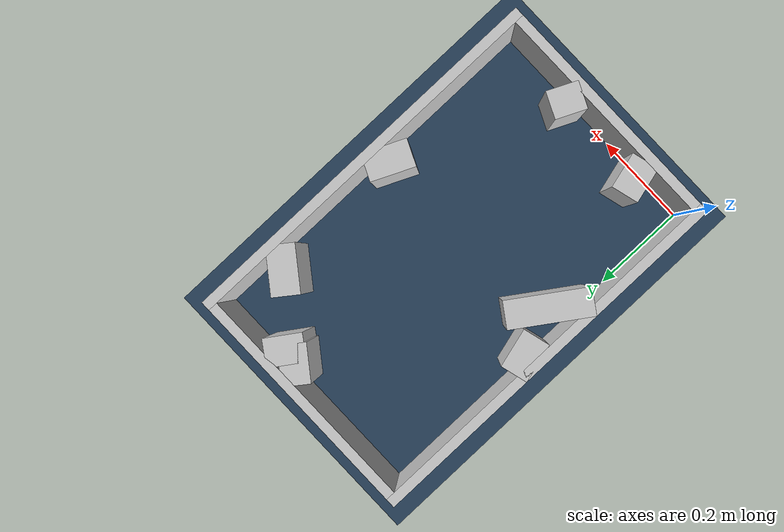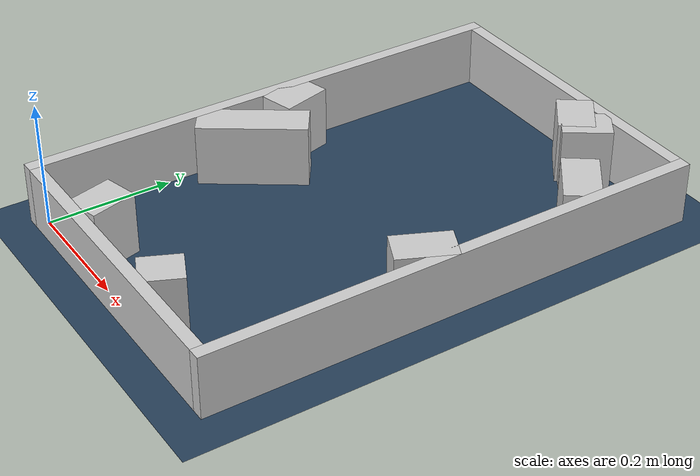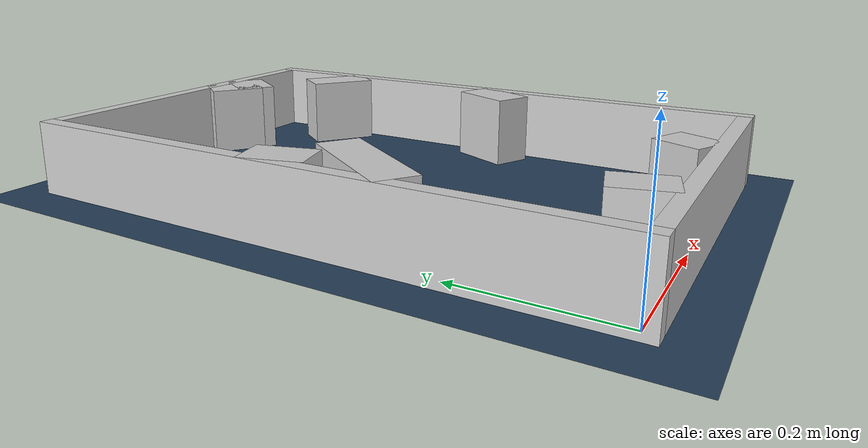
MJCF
<?xml version="1.0" ?>
<mujoco model="generated_real_template">
  <compiler angle="degree"/>
  <option timestep="0.002" integrator="implicitfast" iterations="100" cone="elliptic"/>
  <default>
    <geom density="1"/>
  </default>
  <asset>
    <texture builtin="gradient" height="3072" rgb1="0.3 0.5 0.7" rgb2="0 0 0" type="skybox" width="512"/>
    <texture builtin="checker" height="300" mark="edge" markrgb="0.8 0.8 0.8" name="groundplane" rgb1="0.2 0.3 0.4" rgb2="0.1 0.2 0.3" type="2d" width="300"/>
    <material name="groundplane" reflectance="0.2" texrepeat="5 5" texture="groundplane" texuniform="true"/>
  </asset>
  <worldbody>
    <light dir="0 0 -1" directional="true" pos="0 0 1.5"/>
    <geom name="floor" type="plane" condim="4" friction="0.5 0.005 0.001" material="groundplane" size="0 0 0.05"/>
    <body name="walls">
      <geom name="wall_boundary_left" type="box" condim="4" friction="1.0 0.005 0.0001" rgba="0.8 0.8 0.8 1" pos="-0.010000 0.387500 0.050000" euler="0 0 0.000000" size="0.010000 0.407500 0.050000"/>
      <geom name="wall_boundary_right" type="box" condim="4" friction="1.0 0.005 0.0001" rgba="0.8 0.8 0.8 1" pos="0.500000 0.387500 0.050000" euler="0 0 0.000000" size="0.010000 0.407500 0.050000"/>
      <geom name="wall_boundary_bottom" type="box" condim="4" friction="1.0 0.005 0.0001" rgba="0.8 0.8 0.8 1" pos="0.245000 -0.010000 0.050000" euler="0 0 0.000000" size="0.245000 0.010000 0.050000"/>
      <geom name="wall_boundary_top" type="box" condim="4" friction="1.0 0.005 0.0001" rgba="0.8 0.8 0.8 1" pos="0.245000 0.785000 0.050000" euler="0 0 0.000000" size="0.245000 0.010000 0.050000"/>
      <geom name="wall_inner_1_1" type="box" condim="4" friction="1.0 0.005 0.0001" rgba="0.8 0.8 0.8 1" pos="0.018226 0.418297 0.050000" euler="0 0 -74.976532" size="0.041273 0.028500 0.050000"/>
      <geom name="wall_inner_1_2" type="box" condim="4" friction="1.0 0.005 0.0001" rgba="0.8 0.8 0.8 1" pos="0.120707 0.036458 0.050000" euler="0 0 -74.976532" size="0.037748 0.028500 0.050000"/>
      <geom name="wall_inner_2_1" type="box" condim="4" friction="1.0 0.005 0.0001" rgba="0.8 0.8 0.8 1" pos="0.316624 0.029888 0.050000" euler="0 0 65.401185" size="0.032871 0.028500 0.050000"/>
      <geom name="wall_inner_2_2" type="box" condim="4" friction="1.0 0.005 0.0001" rgba="0.8 0.8 0.8 1" pos="0.464808 0.353567 0.050000" euler="0 0 65.401185" size="0.046311 0.028500 0.050000"/>
      <geom name="wall_inner_3_1" type="box" condim="4" friction="1.0 0.005 0.0001" rgba="0.8 0.8 0.8 1" pos="0.305516 0.748418 0.050000" euler="0 0 -36.597909" size="0.039752 0.028500 0.050000"/>
      <geom name="wall_inner_3_2" type="box" condim="4" friction="1.0 0.005 0.0001" rgba="0.8 0.8 0.8 1" pos="0.450001 0.641122 0.050000" euler="0 0 -36.597909" size="0.049822 0.028500 0.050000"/>
      <geom name="wall_inner_4_1" type="box" condim="4" friction="1.0 0.005 0.0001" rgba="0.8 0.8 0.8 1" pos="0.051972 0.323727 0.050000" euler="0 0 55.724493" size="0.085977 0.028500 0.050000"/>
      <geom name="wall_inner_4_2" type="box" condim="4" friction="1.0 0.005 0.0001" rgba="0.8 0.8 0.8 1" pos="0.337654 0.742907 0.050000" euler="0 0 55.724493" size="0.038837 0.028500 0.050000"/>
    </body>
  </worldbody>
</mujoco>
